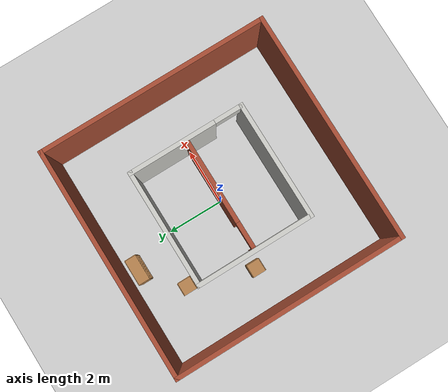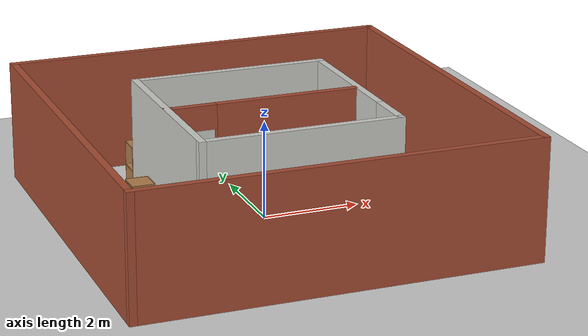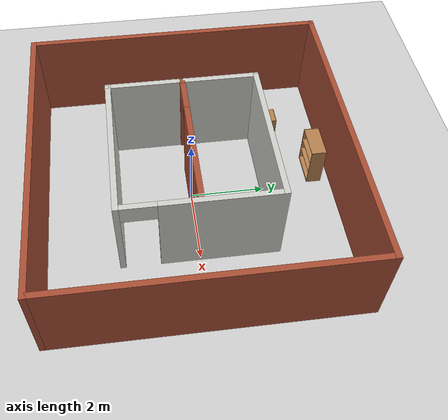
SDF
<sdf version="1.7">
 <world name="default">
  <light name="sun" type="directional">
   <pose>0 0 10 0 -0 0</pose>
   <diffuse>0.8 0.8 0.8 1</diffuse>
   <specular>0.2 0.2 0.2 1</specular>
   <attenuation>
    <range>1000</range>
    <constant>0.9</constant>
    <linear>0.01</linear>
    <quadratic>0.001</quadratic>
   </attenuation>
   <direction>-0.5 0.1 -0.9</direction>
   <spot><inner_angle>0</inner_angle><outer_angle>0</outer_angle><falloff>0</falloff></spot>
  </light>
  <model name="ground_plane">
   <static>1</static>
   <link name="link">
    <collision name="collision">
     <geometry><plane><normal>0 0 1</normal><size>100 100</size></plane></geometry>
     <surface>
      <contact><collide_bitmask>65535</collide_bitmask></contact>
      <friction><ode><mu>100</mu><mu2>50</mu2></ode></friction>
     </surface>
    </collision>
    <visual name="visual">
     <cast_shadows>0</cast_shadows>
     <geometry><plane><normal>0 0 1</normal><size>100 100</size></plane></geometry>
     <material>
      <script><uri>file://media/materials/scripts/gazebo.material</uri><name>Gazebo/Grey</name></script>
     </material>
    </visual>
   </link>
  </model>
  <gravity>0 0 -9.8</gravity>
  <magnetic_field>6e-06 2.3e-05 -4.2e-05</magnetic_field>
  <atmosphere type="adiabatic"/>
  <physics type="ode">
   <max_step_size>0.001</max_step_size>
   <real_time_factor>1</real_time_factor>
   <real_time_update_rate>1000</real_time_update_rate>
  </physics>
  <scene><ambient>0.4 0.4 0.4 1</ambient><background>0.7 0.7 0.7 1</background><shadows>1</shadows></scene>
  <spherical_coordinates>
   <surface_model>EARTH_WGS84</surface_model>
   <latitude_deg>0</latitude_deg>
   <longitude_deg>0</longitude_deg>
   <elevation>0</elevation>
   <heading_deg>0</heading_deg>
  </spherical_coordinates>
  <model name="FYP_2">
   <link name="Wall_0">
    <collision name="Wall_0_Collision">
     <geometry><box><size>4.15 0.15 2.5</size></box></geometry>
     <pose>0 0 1.25 0 -0 0</pose>
    </collision>
    <visual name="Wall_0_Visual">
     <pose>0 0 1.25 0 -0 0</pose>
     <geometry><box><size>4.15 0.15 2.5</size></box></geometry>
     <material>
      <script><uri>file://media/materials/scripts/gazebo.material</uri><name>Gazebo/CeilingTiled</name></script>
      <ambient>0.996078 0.47451 0.0196078 1</ambient>
     </material>
     <meta><layer>0</layer></meta>
    </visual>
    <pose>0 2 0 0 -0 0</pose>
   </link>
   <link name="Wall_1">
    <pose>2 0 0 0 -0 -1.5708</pose>
    <visual name="Wall_1_Visual_0">
     <pose>-0.52225 0 1.25 0 -0 0</pose>
     <geometry><box><size>3.1055 0.15 2.5</size></box></geometry>
     <material>
      <script><uri>file://media/materials/scripts/gazebo.material</uri><name>Gazebo/CeilingTiled</name></script>
      <ambient>0.996078 0.47451 0.0196078 1</ambient>
     </material>
     <meta><layer>0</layer></meta>
    </visual>
    <collision name="Wall_1_Collision_0">
     <geometry><box><size>3.1055 0.15 2.5</size></box></geometry>
     <pose>-0.52225 0 1.25 0 -0 0</pose>
    </collision>
    <visual name="Wall_1_Visual_1">
     <pose>2.00275 0 1.25 0 -0 0</pose>
     <geometry><box><size>0.144499 0.15 2.5</size></box></geometry>
     <material>
      <script><uri>file://media/materials/scripts/gazebo.material</uri><name>Gazebo/CeilingTiled</name></script>
      <ambient>0.996078 0.47451 0.0196078 1</ambient>
     </material>
     <meta><layer>0</layer></meta>
    </visual>
    <collision name="Wall_1_Collision_1">
     <geometry><box><size>0.144499 0.15 2.5</size></box></geometry>
     <pose>2.00275 0 1.25 0 -0 0</pose>
    </collision>
    <visual name="Wall_1_Visual_2">
     <pose>1.4805 0 2.25 0 -0 0</pose>
     <geometry><box><size>0.9 0.15 0.5</size></box></geometry>
     <material>
      <script><uri>file://media/materials/scripts/gazebo.material</uri><name>Gazebo/CeilingTiled</name></script>
      <ambient>0.996078 0.47451 0.0196078 1</ambient>
     </material>
     <meta><layer>0</layer></meta>
    </visual>
    <collision name="Wall_1_Collision_2">
     <geometry><box><size>0.9 0.15 0.5</size></box></geometry>
     <pose>1.4805 0 2.25 0 -0 0</pose>
    </collision>
   </link>
   <link name="Wall_10">
    <visual name="Wall_10_Visual_0">
     <pose>-1.98866 0 1.25 0 -0 0</pose>
     <geometry><box><size>0.172677 0.15 2.5</size></box></geometry>
     <material>
      <script><uri>file://media/materials/scripts/gazebo.material</uri><name>Gazebo/Bricks</name></script>
      <ambient>0.435294 0.796078 0.67451 1</ambient>
     </material>
     <meta><layer>0</layer></meta>
    </visual>
    <collision name="Wall_10_Collision_0">
     <geometry><box><size>0.172677 0.15 2.5</size></box></geometry>
     <pose>-1.98866 0 1.25 0 -0 0</pose>
    </collision>
    <visual name="Wall_10_Visual_1">
     <pose>0.536338 0 1.25 0 -0 0</pose>
     <geometry><box><size>3.07732 0.15 2.5</size></box></geometry>
     <material>
      <script><uri>file://media/materials/scripts/gazebo.material</uri><name>Gazebo/Bricks</name></script>
      <ambient>0.435294 0.796078 0.67451 1</ambient>
     </material>
     <meta><layer>0</layer></meta>
    </visual>
    <collision name="Wall_10_Collision_1">
     <geometry><box><size>3.07732 0.15 2.5</size></box></geometry>
     <pose>0.536338 0 1.25 0 -0 0</pose>
    </collision>
    <visual name="Wall_10_Visual_2">
     <pose>-1.45232 0 2.25 0 -0 0</pose>
     <geometry><box><size>0.9 0.15 0.5</size></box></geometry>
     <material>
      <script><uri>file://media/materials/scripts/gazebo.material</uri><name>Gazebo/Bricks</name></script>
      <ambient>0.435294 0.796078 0.67451 1</ambient>
     </material>
     <meta><layer>0</layer></meta>
    </visual>
    <collision name="Wall_10_Collision_2">
     <geometry><box><size>0.9 0.15 0.5</size></box></geometry>
     <pose>-1.45232 0 2.25 0 -0 0</pose>
    </collision>
   </link>
   <link name="Wall_2">
    <collision name="Wall_2_Collision">
     <geometry><box><size>4.15 0.15 2.5</size></box></geometry>
     <pose>0 0 1.25 0 -0 0</pose>
    </collision>
    <visual name="Wall_2_Visual">
     <pose>0 0 1.25 0 -0 0</pose>
     <geometry><box><size>4.15 0.15 2.5</size></box></geometry>
     <material>
      <script><uri>file://media/materials/scripts/gazebo.material</uri><name>Gazebo/CeilingTiled</name></script>
      <ambient>0.996078 0.47451 0.0196078 1</ambient>
     </material>
     <meta><layer>0</layer></meta>
    </visual>
    <pose>0 -2 0 0 -0 3.14159</pose>
   </link>
   <link name="Wall_3">
    <collision name="Wall_3_Collision">
     <geometry><box><size>4.15 0.15 2.5</size></box></geometry>
     <pose>0 0 1.25 0 -0 0</pose>
    </collision>
    <visual name="Wall_3_Visual">
     <pose>0 0 1.25 0 -0 0</pose>
     <geometry><box><size>4.15 0.15 2.5</size></box></geometry>
     <material>
      <script><uri>file://media/materials/scripts/gazebo.material</uri><name>Gazebo/CeilingTiled</name></script>
      <ambient>0.996078 0.47451 0.0196078 1</ambient>
     </material>
     <meta><layer>0</layer></meta>
    </visual>
    <pose>-2 0 0 0 -0 1.5708</pose>
   </link>
   <link name="Wall_5">
    <collision name="Wall_5_Collision">
     <geometry><box><size>8.15 0.15 2.5</size></box></geometry>
     <pose>0 0 1.25 0 -0 0</pose>
    </collision>
    <visual name="Wall_5_Visual">
     <pose>0 0 1.25 0 -0 0</pose>
     <geometry><box><size>8.15 0.15 2.5</size></box></geometry>
     <material>
      <script><uri>file://media/materials/scripts/gazebo.material</uri><name>Gazebo/Bricks</name></script>
      <ambient>1 1 1 1</ambient>
     </material>
     <meta><layer>0</layer></meta>
    </visual>
    <pose>0 4 0 0 -0 0</pose>
   </link>
   <link name="Wall_6">
    <collision name="Wall_6_Collision">
     <geometry><box><size>8.15 0.15 2.5</size></box></geometry>
     <pose>0 0 1.25 0 -0 0</pose>
    </collision>
    <visual name="Wall_6_Visual">
     <pose>0 0 1.25 0 -0 0</pose>
     <geometry><box><size>8.15 0.15 2.5</size></box></geometry>
     <material>
      <script><uri>file://media/materials/scripts/gazebo.material</uri><name>Gazebo/Bricks</name></script>
      <ambient>1 1 1 1</ambient>
     </material>
     <meta><layer>0</layer></meta>
    </visual>
    <pose>4 0 0 0 -0 -1.5708</pose>
   </link>
   <link name="Wall_7">
    <collision name="Wall_7_Collision">
     <geometry><box><size>8.15 0.15 2.5</size></box></geometry>
     <pose>0 0 1.25 0 -0 0</pose>
    </collision>
    <visual name="Wall_7_Visual">
     <pose>0 0 1.25 0 -0 0</pose>
     <geometry><box><size>8.15 0.15 2.5</size></box></geometry>
     <material>
      <script><uri>file://media/materials/scripts/gazebo.material</uri><name>Gazebo/Bricks</name></script>
      <ambient>1 1 1 1</ambient>
     </material>
     <meta><layer>0</layer></meta>
    </visual>
    <pose>0 -4 0 0 -0 3.14159</pose>
   </link>
   <link name="Wall_8">
    <collision name="Wall_8_Collision">
     <geometry><box><size>8.15 0.15 2.5</size></box></geometry>
     <pose>0 0 1.25 0 -0 0</pose>
    </collision>
    <visual name="Wall_8_Visual">
     <pose>0 0 1.25 0 -0 0</pose>
     <geometry><box><size>8.15 0.15 2.5</size></box></geometry>
     <material>
      <script><uri>file://media/materials/scripts/gazebo.material</uri><name>Gazebo/Bricks</name></script>
      <ambient>1 1 1 1</ambient>
     </material>
     <meta><layer>0</layer></meta>
    </visual>
    <pose>-4 0 0 0 -0 1.5708</pose>
   </link>
   <static>1</static>
  </model>
  <model name="bookshelf">
   <static>1</static>
   <link name="link">
    <inertial><mass>1</mass></inertial>
    <collision name="back">
     <pose>0 0.005 0.6 0 -0 0</pose>
     <geometry><box><size>0.9 0.01 1.2</size></box></geometry>
    </collision>
    <visual name="visual1">
     <pose>0 0.005 0.6 0 -0 0</pose>
     <geometry><box><size>0.9 0.01 1.2</size></box></geometry>
     <material>
      <script><uri>file://media/materials/scripts/gazebo.material</uri><name>Gazebo/Wood</name></script>
     </material>
    </visual>
    <collision name="left_side">
     <pose>0.45 -0.195 0.6 0 -0 0</pose>
     <geometry><box><size>0.02 0.4 1.2</size></box></geometry>
    </collision>
    <visual name="visual2">
     <pose>0.45 -0.195 0.6 0 -0 0</pose>
     <geometry><box><size>0.02 0.4 1.2</size></box></geometry>
     <material>
      <script><uri>file://media/materials/scripts/gazebo.material</uri><name>Gazebo/Wood</name></script>
     </material>
    </visual>
    <collision name="right_side">
     <pose>-0.45 -0.195 0.6 0 -0 0</pose>
     <geometry><box><size>0.02 0.4 1.2</size></box></geometry>
    </collision>
    <visual name="visual3">
     <pose>-0.45 -0.195 0.6 0 -0 0</pose>
     <geometry><box><size>0.02 0.4 1.2</size></box></geometry>
     <material>
      <script><uri>file://media/materials/scripts/gazebo.material</uri><name>Gazebo/Wood</name></script>
     </material>
    </visual>
    <collision name="bottom">
     <pose>0 -0.195 0.03 0 -0 0</pose>
     <geometry><box><size>0.88 0.4 0.06</size></box></geometry>
    </collision>
    <visual name="visual4">
     <pose>0 -0.195 0.03 0 -0 0</pose>
     <geometry><box><size>0.88 0.4 0.06</size></box></geometry>
     <material>
      <script><uri>file://media/materials/scripts/gazebo.material</uri><name>Gazebo/Wood</name></script>
     </material>
    </visual>
    <collision name="top">
     <pose>0 -0.195 1.19 0 -0 0</pose>
     <geometry><box><size>0.88 0.4 0.02</size></box></geometry>
    </collision>
    <visual name="visual5">
     <pose>0 -0.195 1.19 0 -0 0</pose>
     <geometry><box><size>0.88 0.4 0.02</size></box></geometry>
     <material>
      <script><uri>file://media/materials/scripts/gazebo.material</uri><name>Gazebo/Wood</name></script>
     </material>
    </visual>
    <collision name="low_shelf">
     <pose>0 -0.195 0.43 0 -0 0</pose>
     <geometry><box><size>0.88 0.4 0.02</size></box></geometry>
    </collision>
    <visual name="visual6">
     <pose>0 -0.195 0.43 0 -0 0</pose>
     <geometry><box><size>0.88 0.4 0.02</size></box></geometry>
     <material>
      <script><uri>file://media/materials/scripts/gazebo.material</uri><name>Gazebo/Wood</name></script>
     </material>
    </visual>
    <collision name="high_shelf">
     <pose>0 -0.195 0.8 0 -0 0</pose>
     <geometry><box><size>0.88 0.4 0.02</size></box></geometry>
    </collision>
    <visual name="visual7">
     <pose>0 -0.195 0.8 0 -0 0</pose>
     <geometry><box><size>0.88 0.4 0.02</size></box></geometry>
     <material>
      <script><uri>file://media/materials/scripts/gazebo.material</uri><name>Gazebo/Wood</name></script>
     </material>
    </visual>
   </link>
   <pose>-0.55317 3.67827 0 0 -0 0</pose>
  </model>
  <model name="cabinet">
   <static>1</static>
   <link name="cabinet_bottom_plate">
    <inertial>
     <pose>0 0 -1 0 -0 0</pose>
     <inertia><ixx>2.05</ixx><ixy>0</ixy><ixz>0</ixz><iyy>2.05</iyy><iyz>0</iyz><izz>2.05</izz></inertia>
     <mass>25</mass>
    </inertial>
    <collision name="cabinet_bottom_plate_geom">
     <pose>0 0 0.01 0 -0 0</pose>
     <geometry><box><size>0.45 0.45 0.02</size></box></geometry>
    </collision>
    <visual name="cabinet_bottom_plate_geom_visual">
     <pose>0 0 0.01 0 -0 0</pose>
     <geometry><box><size>0.45 0.45 0.02</size></box></geometry>
     <material>
      <script><uri>file://media/materials/scripts/gazebo.material</uri><name>Gazebo/Wood</name></script>
     </material>
    </visual>
    <collision name="cabinet_bottom_plate_geom_cabinet_back_plate">
     <pose>0.235 0 0.51 0 -0 0</pose>
     <geometry><box><size>0.02 0.45 1.02</size></box></geometry>
    </collision>
    <visual name="cabinet_bottom_plate_geom_cabinet_back_plate_visual">
     <pose>0.235 0 0.51 0 -0 0</pose>
     <geometry><box><size>0.02 0.45 1.02</size></box></geometry>
     <material>
      <script><uri>file://media/materials/scripts/gazebo.material</uri><name>Gazebo/Wood</name></script>
     </material>
    </visual>
    <collision name="cabinet_bottom_plate_geom_cabinet_left_plate">
     <pose>0 0.235 0.51 0 -0 0</pose>
     <geometry><box><size>0.45 0.02 1.02</size></box></geometry>
    </collision>
    <visual name="cabinet_bottom_plate_geom_cabinet_left_plate_visual">
     <pose>0 0.235 0.51 0 -0 0</pose>
     <geometry><box><size>0.45 0.02 1.02</size></box></geometry>
     <material>
      <script><uri>file://media/materials/scripts/gazebo.material</uri><name>Gazebo/Wood</name></script>
     </material>
    </visual>
    <collision name="cabinet_bottom_plate_geom_cabinet_middle_plate">
     <pose>0 0 0.51 0 -0 0</pose>
     <geometry><box><size>0.45 0.45 0.02</size></box></geometry>
    </collision>
    <visual name="cabinet_bottom_plate_geom_cabinet_middle_plate_visual">
     <pose>0 0 0.51 0 -0 0</pose>
     <geometry><box><size>0.45 0.45 0.02</size></box></geometry>
     <material>
      <script><uri>file://media/materials/scripts/gazebo.material</uri><name>Gazebo/Wood</name></script>
     </material>
    </visual>
    <collision name="cabinet_bottom_plate_geom_cabinet_right_plate">
     <pose>0 -0.235 0.51 0 -0 0</pose>
     <geometry><box><size>0.45 0.02 1.02</size></box></geometry>
    </collision>
    <visual name="cabinet_bottom_plate_geom_cabinet_right_plate_visual">
     <pose>0 -0.235 0.51 0 -0 0</pose>
     <geometry><box><size>0.45 0.02 1.02</size></box></geometry>
     <material>
      <script><uri>file://media/materials/scripts/gazebo.material</uri><name>Gazebo/Wood</name></script>
     </material>
    </visual>
    <collision name="cabinet_bottom_plate_geom_cabinet_top_plate">
     <pose>0 0 1.01 0 -0 0</pose>
     <geometry><box><size>0.45 0.45 0.02</size></box></geometry>
    </collision>
    <visual name="cabinet_bottom_plate_geom_cabinet_top_plate_visual">
     <pose>0 0 1.01 0 -0 0</pose>
     <geometry><box><size>0.45 0.45 0.02</size></box></geometry>
     <material>
      <script><uri>file://media/materials/scripts/gazebo.material</uri><name>Gazebo/Wood</name></script>
     </material>
    </visual>
   </link>
   <pose>-2.5141 0.203645 0 0 -0 0</pose>
  </model>
  <model name="cabinet_0">
   <static>1</static>
   <link name="cabinet_bottom_plate">
    <inertial>
     <pose>0 0 -1 0 -0 0</pose>
     <inertia><ixx>2.05</ixx><ixy>0</ixy><ixz>0</ixz><iyy>2.05</iyy><iyz>0</iyz><izz>2.05</izz></inertia>
     <mass>25</mass>
    </inertial>
    <collision name="cabinet_bottom_plate_geom">
     <pose>0 0 0.01 0 -0 0</pose>
     <geometry><box><size>0.45 0.45 0.02</size></box></geometry>
    </collision>
    <visual name="cabinet_bottom_plate_geom_visual">
     <pose>0 0 0.01 0 -0 0</pose>
     <geometry><box><size>0.45 0.45 0.02</size></box></geometry>
     <material>
      <script><uri>file://media/materials/scripts/gazebo.material</uri><name>Gazebo/Wood</name></script>
     </material>
    </visual>
    <collision name="cabinet_bottom_plate_geom_cabinet_back_plate">
     <pose>0.235 0 0.51 0 -0 0</pose>
     <geometry><box><size>0.02 0.45 1.02</size></box></geometry>
    </collision>
    <visual name="cabinet_bottom_plate_geom_cabinet_back_plate_visual">
     <pose>0.235 0 0.51 0 -0 0</pose>
     <geometry><box><size>0.02 0.45 1.02</size></box></geometry>
     <material>
      <script><uri>file://media/materials/scripts/gazebo.material</uri><name>Gazebo/Wood</name></script>
     </material>
    </visual>
    <collision name="cabinet_bottom_plate_geom_cabinet_left_plate">
     <pose>0 0.235 0.51 0 -0 0</pose>
     <geometry><box><size>0.45 0.02 1.02</size></box></geometry>
    </collision>
    <visual name="cabinet_bottom_plate_geom_cabinet_left_plate_visual">
     <pose>0 0.235 0.51 0 -0 0</pose>
     <geometry><box><size>0.45 0.02 1.02</size></box></geometry>
     <material>
      <script><uri>file://media/materials/scripts/gazebo.material</uri><name>Gazebo/Wood</name></script>
     </material>
    </visual>
    <collision name="cabinet_bottom_plate_geom_cabinet_middle_plate">
     <pose>0 0 0.51 0 -0 0</pose>
     <geometry><box><size>0.45 0.45 0.02</size></box></geometry>
    </collision>
    <visual name="cabinet_bottom_plate_geom_cabinet_middle_plate_visual">
     <pose>0 0 0.51 0 -0 0</pose>
     <geometry><box><size>0.45 0.45 0.02</size></box></geometry>
     <material>
      <script><uri>file://media/materials/scripts/gazebo.material</uri><name>Gazebo/Wood</name></script>
     </material>
    </visual>
    <collision name="cabinet_bottom_plate_geom_cabinet_right_plate">
     <pose>0 -0.235 0.51 0 -0 0</pose>
     <geometry><box><size>0.45 0.02 1.02</size></box></geometry>
    </collision>
    <visual name="cabinet_bottom_plate_geom_cabinet_right_plate_visual">
     <pose>0 -0.235 0.51 0 -0 0</pose>
     <geometry><box><size>0.45 0.02 1.02</size></box></geometry>
     <material>
      <script><uri>file://media/materials/scripts/gazebo.material</uri><name>Gazebo/Wood</name></script>
     </material>
    </visual>
    <collision name="cabinet_bottom_plate_geom_cabinet_top_plate">
     <pose>0 0 1.01 0 -0 0</pose>
     <geometry><box><size>0.45 0.45 0.02</size></box></geometry>
    </collision>
    <visual name="cabinet_bottom_plate_geom_cabinet_top_plate_visual">
     <pose>0 0 1.01 0 -0 0</pose>
     <geometry><box><size>0.45 0.45 0.02</size></box></geometry>
     <material>
      <script><uri>file://media/materials/scripts/gazebo.material</uri><name>Gazebo/Wood</name></script>
     </material>
    </visual>
   </link>
   <pose>-1.83587 2.39625 0 0 -0 0</pose>
  </model>
 </world>
</sdf>
